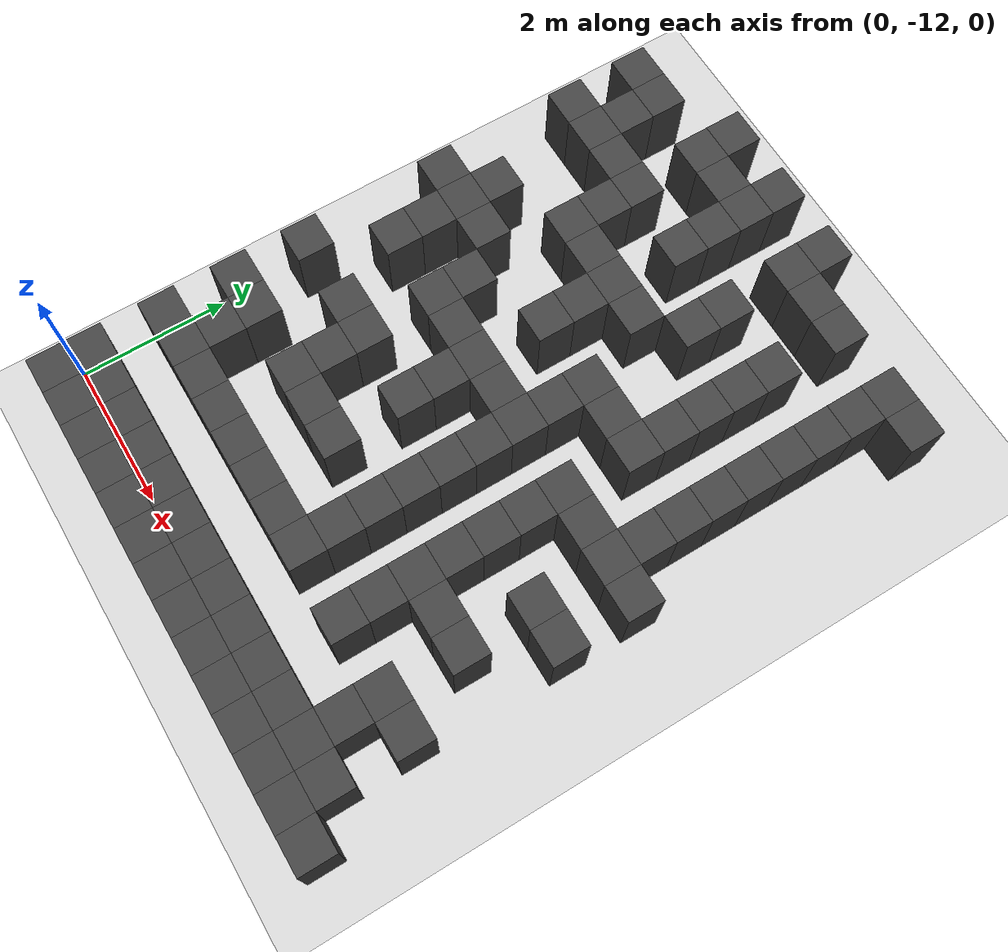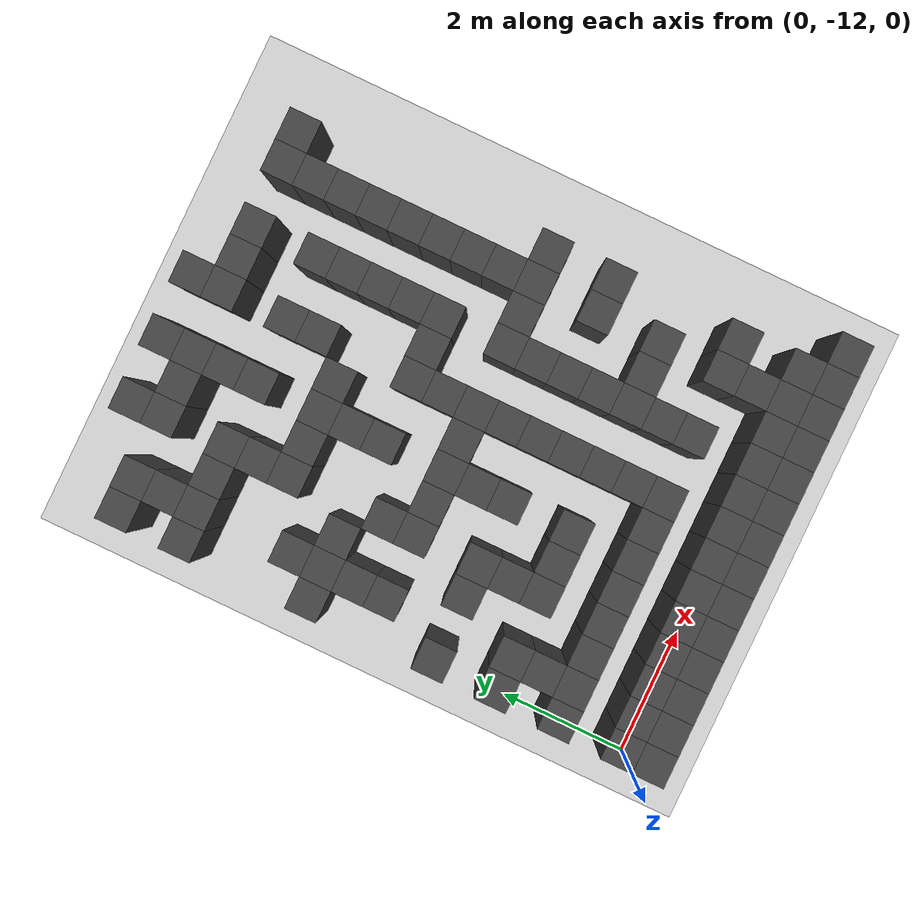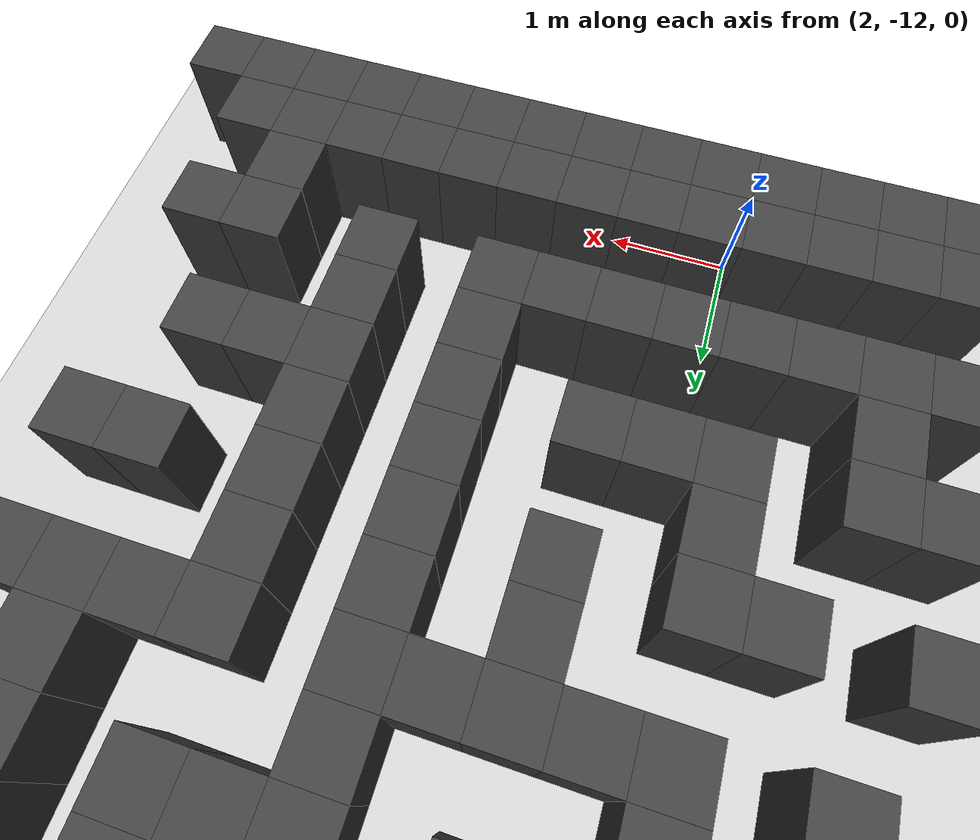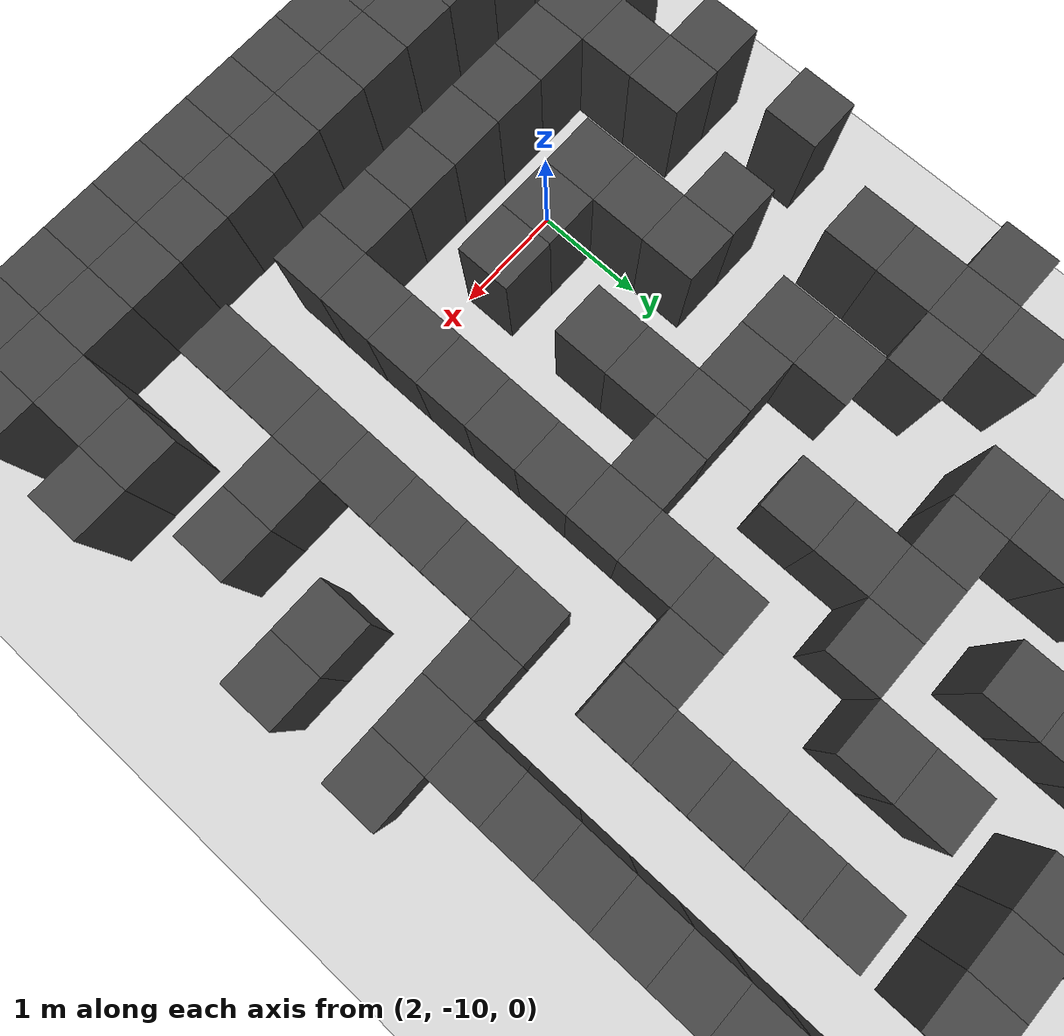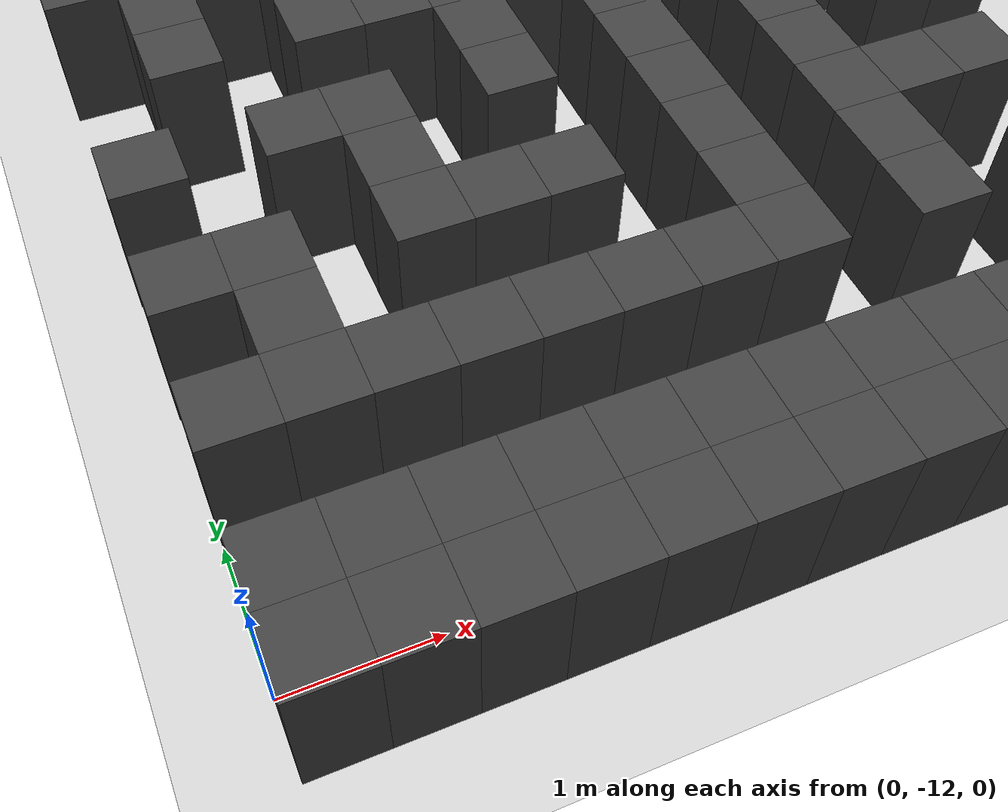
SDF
<sdf version="1.7">
 <world name="map_16668">
  <model name="ground_plane">
   <static>true</static>
   <link name="link">
    <collision name="collision">
     <geometry><plane><normal>0 0 1</normal><size>200 200</size></plane></geometry>
    </collision>
    <visual name="visual">
     <geometry><plane><normal>0 0 1</normal><size>200 200</size></plane></geometry>
     <material><ambient>0.8 0.8 0.8 1</ambient><diffuse>0.8 0.8 0.8 1</diffuse></material>
    </visual>
   </link>
  </model>
  <model name="maze_environment">
   <static>true</static>
   <link name="wall_758">
    <pose>1.750 -3.250 0.500 0 0 0</pose>
    <collision name="col"><geometry><box><size>0.5 0.5 1.0</size></box></geometry></collision>
    <visual name="vis">
     <geometry><box><size>0.5 0.5 1.0</size></box></geometry>
     <material><ambient>0.15 0.15 0.15 1</ambient><diffuse>0.25 0.25 0.25 1</diffuse></material>
    </visual>
   </link>
   <link name="wall_759">
    <pose>2.750 -3.250 0.500 0 0 0</pose>
    <collision name="col"><geometry><box><size>0.5 0.5 1.0</size></box></geometry></collision>
    <visual name="vis">
     <geometry><box><size>0.5 0.5 1.0</size></box></geometry>
     <material><ambient>0.15 0.15 0.15 1</ambient><diffuse>0.25 0.25 0.25 1</diffuse></material>
    </visual>
   </link>
   <link name="wall_760">
    <pose>3.750 -3.250 0.500 0 0 0</pose>
    <collision name="col"><geometry><box><size>0.5 0.5 1.0</size></box></geometry></collision>
    <visual name="vis">
     <geometry><box><size>0.5 0.5 1.0</size></box></geometry>
     <material><ambient>0.15 0.15 0.15 1</ambient><diffuse>0.25 0.25 0.25 1</diffuse></material>
    </visual>
   </link>
   <link name="wall_781">
    <pose>0.250 -3.750 0.500 0 0 0</pose>
    <collision name="col"><geometry><box><size>0.5 0.5 1.0</size></box></geometry></collision>
    <visual name="vis">
     <geometry><box><size>0.5 0.5 1.0</size></box></geometry>
     <material><ambient>0.15 0.15 0.15 1</ambient><diffuse>0.25 0.25 0.25 1</diffuse></material>
    </visual>
   </link>
   <link name="wall_782">
    <pose>0.750 -3.750 0.500 0 0 0</pose>
    <collision name="col"><geometry><box><size>0.5 0.5 1.0</size></box></geometry></collision>
    <visual name="vis">
     <geometry><box><size>0.5 0.5 1.0</size></box></geometry>
     <material><ambient>0.15 0.15 0.15 1</ambient><diffuse>0.25 0.25 0.25 1</diffuse></material>
    </visual>
   </link>
   <link name="wall_783">
    <pose>1.750 -3.750 0.500 0 0 0</pose>
    <collision name="col"><geometry><box><size>0.5 0.5 1.0</size></box></geometry></collision>
    <visual name="vis">
     <geometry><box><size>0.5 0.5 1.0</size></box></geometry>
     <material><ambient>0.15 0.15 0.15 1</ambient><diffuse>0.25 0.25 0.25 1</diffuse></material>
    </visual>
   </link>
   <link name="wall_784">
    <pose>2.250 -3.750 0.500 0 0 0</pose>
    <collision name="col"><geometry><box><size>0.5 0.5 1.0</size></box></geometry></collision>
    <visual name="vis">
     <geometry><box><size>0.5 0.5 1.0</size></box></geometry>
     <material><ambient>0.15 0.15 0.15 1</ambient><diffuse>0.25 0.25 0.25 1</diffuse></material>
    </visual>
   </link>
   <link name="wall_785">
    <pose>2.750 -3.750 0.500 0 0 0</pose>
    <collision name="col"><geometry><box><size>0.5 0.5 1.0</size></box></geometry></collision>
    <visual name="vis">
     <geometry><box><size>0.5 0.5 1.0</size></box></geometry>
     <material><ambient>0.15 0.15 0.15 1</ambient><diffuse>0.25 0.25 0.25 1</diffuse></material>
    </visual>
   </link>
   <link name="wall_786">
    <pose>3.750 -3.750 0.500 0 0 0</pose>
    <collision name="col"><geometry><box><size>0.5 0.5 1.0</size></box></geometry></collision>
    <visual name="vis">
     <geometry><box><size>0.5 0.5 1.0</size></box></geometry>
     <material><ambient>0.15 0.15 0.15 1</ambient><diffuse>0.25 0.25 0.25 1</diffuse></material>
    </visual>
   </link>
   <link name="wall_787">
    <pose>4.250 -3.750 0.500 0 0 0</pose>
    <collision name="col"><geometry><box><size>0.5 0.5 1.0</size></box></geometry></collision>
    <visual name="vis">
     <geometry><box><size>0.5 0.5 1.0</size></box></geometry>
     <material><ambient>0.15 0.15 0.15 1</ambient><diffuse>0.25 0.25 0.25 1</diffuse></material>
    </visual>
   </link>
   <link name="wall_788">
    <pose>4.750 -3.750 0.500 0 0 0</pose>
    <collision name="col"><geometry><box><size>0.5 0.5 1.0</size></box></geometry></collision>
    <visual name="vis">
     <geometry><box><size>0.5 0.5 1.0</size></box></geometry>
     <material><ambient>0.15 0.15 0.15 1</ambient><diffuse>0.25 0.25 0.25 1</diffuse></material>
    </visual>
   </link>
   <link name="wall_789">
    <pose>5.750 -3.750 0.500 0 0 0</pose>
    <collision name="col"><geometry><box><size>0.5 0.5 1.0</size></box></geometry></collision>
    <visual name="vis">
     <geometry><box><size>0.5 0.5 1.0</size></box></geometry>
     <material><ambient>0.15 0.15 0.15 1</ambient><diffuse>0.25 0.25 0.25 1</diffuse></material>
    </visual>
   </link>
   <link name="wall_790">
    <pose>6.250 -3.750 0.500 0 0 0</pose>
    <collision name="col"><geometry><box><size>0.5 0.5 1.0</size></box></geometry></collision>
    <visual name="vis">
     <geometry><box><size>0.5 0.5 1.0</size></box></geometry>
     <material><ambient>0.15 0.15 0.15 1</ambient><diffuse>0.25 0.25 0.25 1</diffuse></material>
    </visual>
   </link>
   <link name="wall_807">
    <pose>0.750 -4.250 0.500 0 0 0</pose>
    <collision name="col"><geometry><box><size>0.5 0.5 1.0</size></box></geometry></collision>
    <visual name="vis">
     <geometry><box><size>0.5 0.5 1.0</size></box></geometry>
     <material><ambient>0.15 0.15 0.15 1</ambient><diffuse>0.25 0.25 0.25 1</diffuse></material>
    </visual>
   </link>
   <link name="wall_808">
    <pose>2.750 -4.250 0.500 0 0 0</pose>
    <collision name="col"><geometry><box><size>0.5 0.5 1.0</size></box></geometry></collision>
    <visual name="vis">
     <geometry><box><size>0.5 0.5 1.0</size></box></geometry>
     <material><ambient>0.15 0.15 0.15 1</ambient><diffuse>0.25 0.25 0.25 1</diffuse></material>
    </visual>
   </link>
   <link name="wall_809">
    <pose>5.750 -4.250 0.500 0 0 0</pose>
    <collision name="col"><geometry><box><size>0.5 0.5 1.0</size></box></geometry></collision>
    <visual name="vis">
     <geometry><box><size>0.5 0.5 1.0</size></box></geometry>
     <material><ambient>0.15 0.15 0.15 1</ambient><diffuse>0.25 0.25 0.25 1</diffuse></material>
    </visual>
   </link>
   <link name="wall_830">
    <pose>0.250 -4.750 0.500 0 0 0</pose>
    <collision name="col"><geometry><box><size>0.5 0.5 1.0</size></box></geometry></collision>
    <visual name="vis">
     <geometry><box><size>0.5 0.5 1.0</size></box></geometry>
     <material><ambient>0.15 0.15 0.15 1</ambient><diffuse>0.25 0.25 0.25 1</diffuse></material>
    </visual>
   </link>
   <link name="wall_831">
    <pose>0.750 -4.750 0.500 0 0 0</pose>
    <collision name="col"><geometry><box><size>0.5 0.5 1.0</size></box></geometry></collision>
    <visual name="vis">
     <geometry><box><size>0.5 0.5 1.0</size></box></geometry>
     <material><ambient>0.15 0.15 0.15 1</ambient><diffuse>0.25 0.25 0.25 1</diffuse></material>
    </visual>
   </link>
   <link name="wall_832">
    <pose>1.250 -4.750 0.500 0 0 0</pose>
    <collision name="col"><geometry><box><size>0.5 0.5 1.0</size></box></geometry></collision>
    <visual name="vis">
     <geometry><box><size>0.5 0.5 1.0</size></box></geometry>
     <material><ambient>0.15 0.15 0.15 1</ambient><diffuse>0.25 0.25 0.25 1</diffuse></material>
    </visual>
   </link>
   <link name="wall_833">
    <pose>1.750 -4.750 0.500 0 0 0</pose>
    <collision name="col"><geometry><box><size>0.5 0.5 1.0</size></box></geometry></collision>
    <visual name="vis">
     <geometry><box><size>0.5 0.5 1.0</size></box></geometry>
     <material><ambient>0.15 0.15 0.15 1</ambient><diffuse>0.25 0.25 0.25 1</diffuse></material>
    </visual>
   </link>
   <link name="wall_834">
    <pose>2.750 -4.750 0.500 0 0 0</pose>
    <collision name="col"><geometry><box><size>0.5 0.5 1.0</size></box></geometry></collision>
    <visual name="vis">
     <geometry><box><size>0.5 0.5 1.0</size></box></geometry>
     <material><ambient>0.15 0.15 0.15 1</ambient><diffuse>0.25 0.25 0.25 1</diffuse></material>
    </visual>
   </link>
   <link name="wall_835">
    <pose>3.750 -4.750 0.500 0 0 0</pose>
    <collision name="col"><geometry><box><size>0.5 0.5 1.0</size></box></geometry></collision>
    <visual name="vis">
     <geometry><box><size>0.5 0.5 1.0</size></box></geometry>
     <material><ambient>0.15 0.15 0.15 1</ambient><diffuse>0.25 0.25 0.25 1</diffuse></material>
    </visual>
   </link>
   <link name="wall_836">
    <pose>4.750 -4.750 0.500 0 0 0</pose>
    <collision name="col"><geometry><box><size>0.5 0.5 1.0</size></box></geometry></collision>
    <visual name="vis">
     <geometry><box><size>0.5 0.5 1.0</size></box></geometry>
     <material><ambient>0.15 0.15 0.15 1</ambient><diffuse>0.25 0.25 0.25 1</diffuse></material>
    </visual>
   </link>
   <link name="wall_837">
    <pose>5.750 -4.750 0.500 0 0 0</pose>
    <collision name="col"><geometry><box><size>0.5 0.5 1.0</size></box></geometry></collision>
    <visual name="vis">
     <geometry><box><size>0.5 0.5 1.0</size></box></geometry>
     <material><ambient>0.15 0.15 0.15 1</ambient><diffuse>0.25 0.25 0.25 1</diffuse></material>
    </visual>
   </link>
   <link name="wall_853">
    <pose>1.750 -5.250 0.500 0 0 0</pose>
    <collision name="col"><geometry><box><size>0.5 0.5 1.0</size></box></geometry></collision>
    <visual name="vis">
     <geometry><box><size>0.5 0.5 1.0</size></box></geometry>
     <material><ambient>0.15 0.15 0.15 1</ambient><diffuse>0.25 0.25 0.25 1</diffuse></material>
    </visual>
   </link>
   <link name="wall_854">
    <pose>3.750 -5.250 0.500 0 0 0</pose>
    <collision name="col"><geometry><box><size>0.5 0.5 1.0</size></box></geometry></collision>
    <visual name="vis">
     <geometry><box><size>0.5 0.5 1.0</size></box></geometry>
     <material><ambient>0.15 0.15 0.15 1</ambient><diffuse>0.25 0.25 0.25 1</diffuse></material>
    </visual>
   </link>
   <link name="wall_855">
    <pose>4.750 -5.250 0.500 0 0 0</pose>
    <collision name="col"><geometry><box><size>0.5 0.5 1.0</size></box></geometry></collision>
    <visual name="vis">
     <geometry><box><size>0.5 0.5 1.0</size></box></geometry>
     <material><ambient>0.15 0.15 0.15 1</ambient><diffuse>0.25 0.25 0.25 1</diffuse></material>
    </visual>
   </link>
   <link name="wall_856">
    <pose>5.750 -5.250 0.500 0 0 0</pose>
    <collision name="col"><geometry><box><size>0.5 0.5 1.0</size></box></geometry></collision>
    <visual name="vis">
     <geometry><box><size>0.5 0.5 1.0</size></box></geometry>
     <material><ambient>0.15 0.15 0.15 1</ambient><diffuse>0.25 0.25 0.25 1</diffuse></material>
    </visual>
   </link>
   <link name="wall_881">
    <pose>1.750 -5.750 0.500 0 0 0</pose>
    <collision name="col"><geometry><box><size>0.5 0.5 1.0</size></box></geometry></collision>
    <visual name="vis">
     <geometry><box><size>0.5 0.5 1.0</size></box></geometry>
     <material><ambient>0.15 0.15 0.15 1</ambient><diffuse>0.25 0.25 0.25 1</diffuse></material>
    </visual>
   </link>
   <link name="wall_882">
    <pose>2.250 -5.750 0.500 0 0 0</pose>
    <collision name="col"><geometry><box><size>0.5 0.5 1.0</size></box></geometry></collision>
    <visual name="vis">
     <geometry><box><size>0.5 0.5 1.0</size></box></geometry>
     <material><ambient>0.15 0.15 0.15 1</ambient><diffuse>0.25 0.25 0.25 1</diffuse></material>
    </visual>
   </link>
   <link name="wall_883">
    <pose>2.750 -5.750 0.500 0 0 0</pose>
    <collision name="col"><geometry><box><size>0.5 0.5 1.0</size></box></geometry></collision>
    <visual name="vis">
     <geometry><box><size>0.5 0.5 1.0</size></box></geometry>
     <material><ambient>0.15 0.15 0.15 1</ambient><diffuse>0.25 0.25 0.25 1</diffuse></material>
    </visual>
   </link>
   <link name="wall_884">
    <pose>3.250 -5.750 0.500 0 0 0</pose>
    <collision name="col"><geometry><box><size>0.5 0.5 1.0</size></box></geometry></collision>
    <visual name="vis">
     <geometry><box><size>0.5 0.5 1.0</size></box></geometry>
     <material><ambient>0.15 0.15 0.15 1</ambient><diffuse>0.25 0.25 0.25 1</diffuse></material>
    </visual>
   </link>
   <link name="wall_885">
    <pose>4.750 -5.750 0.500 0 0 0</pose>
    <collision name="col"><geometry><box><size>0.5 0.5 1.0</size></box></geometry></collision>
    <visual name="vis">
     <geometry><box><size>0.5 0.5 1.0</size></box></geometry>
     <material><ambient>0.15 0.15 0.15 1</ambient><diffuse>0.25 0.25 0.25 1</diffuse></material>
    </visual>
   </link>
   <link name="wall_886">
    <pose>5.750 -5.750 0.500 0 0 0</pose>
    <collision name="col"><geometry><box><size>0.5 0.5 1.0</size></box></geometry></collision>
    <visual name="vis">
     <geometry><box><size>0.5 0.5 1.0</size></box></geometry>
     <material><ambient>0.15 0.15 0.15 1</ambient><diffuse>0.25 0.25 0.25 1</diffuse></material>
    </visual>
   </link>
   <link name="wall_901">
    <pose>0.750 -6.250 0.500 0 0 0</pose>
    <collision name="col"><geometry><box><size>0.5 0.5 1.0</size></box></geometry></collision>
    <visual name="vis">
     <geometry><box><size>0.5 0.5 1.0</size></box></geometry>
     <material><ambient>0.15 0.15 0.15 1</ambient><diffuse>0.25 0.25 0.25 1</diffuse></material>
    </visual>
   </link>
   <link name="wall_902">
    <pose>2.750 -6.250 0.500 0 0 0</pose>
    <collision name="col"><geometry><box><size>0.5 0.5 1.0</size></box></geometry></collision>
    <visual name="vis">
     <geometry><box><size>0.5 0.5 1.0</size></box></geometry>
     <material><ambient>0.15 0.15 0.15 1</ambient><diffuse>0.25 0.25 0.25 1</diffuse></material>
    </visual>
   </link>
   <link name="wall_903">
    <pose>4.750 -6.250 0.500 0 0 0</pose>
    <collision name="col"><geometry><box><size>0.5 0.5 1.0</size></box></geometry></collision>
    <visual name="vis">
     <geometry><box><size>0.5 0.5 1.0</size></box></geometry>
     <material><ambient>0.15 0.15 0.15 1</ambient><diffuse>0.25 0.25 0.25 1</diffuse></material>
    </visual>
   </link>
   <link name="wall_904">
    <pose>5.750 -6.250 0.500 0 0 0</pose>
    <collision name="col"><geometry><box><size>0.5 0.5 1.0</size></box></geometry></collision>
    <visual name="vis">
     <geometry><box><size>0.5 0.5 1.0</size></box></geometry>
     <material><ambient>0.15 0.15 0.15 1</ambient><diffuse>0.25 0.25 0.25 1</diffuse></material>
    </visual>
   </link>
   <link name="wall_927">
    <pose>0.250 -6.750 0.500 0 0 0</pose>
    <collision name="col"><geometry><box><size>0.5 0.5 1.0</size></box></geometry></collision>
    <visual name="vis">
     <geometry><box><size>0.5 0.5 1.0</size></box></geometry>
     <material><ambient>0.15 0.15 0.15 1</ambient><diffuse>0.25 0.25 0.25 1</diffuse></material>
    </visual>
   </link>
   <link name="wall_928">
    <pose>0.750 -6.750 0.500 0 0 0</pose>
    <collision name="col"><geometry><box><size>0.5 0.5 1.0</size></box></geometry></collision>
    <visual name="vis">
     <geometry><box><size>0.5 0.5 1.0</size></box></geometry>
     <material><ambient>0.15 0.15 0.15 1</ambient><diffuse>0.25 0.25 0.25 1</diffuse></material>
    </visual>
   </link>
   <link name="wall_929">
    <pose>1.250 -6.750 0.500 0 0 0</pose>
    <collision name="col"><geometry><box><size>0.5 0.5 1.0</size></box></geometry></collision>
    <visual name="vis">
     <geometry><box><size>0.5 0.5 1.0</size></box></geometry>
     <material><ambient>0.15 0.15 0.15 1</ambient><diffuse>0.25 0.25 0.25 1</diffuse></material>
    </visual>
   </link>
   <link name="wall_930">
    <pose>2.750 -6.750 0.500 0 0 0</pose>
    <collision name="col"><geometry><box><size>0.5 0.5 1.0</size></box></geometry></collision>
    <visual name="vis">
     <geometry><box><size>0.5 0.5 1.0</size></box></geometry>
     <material><ambient>0.15 0.15 0.15 1</ambient><diffuse>0.25 0.25 0.25 1</diffuse></material>
    </visual>
   </link>
   <link name="wall_931">
    <pose>3.750 -6.750 0.500 0 0 0</pose>
    <collision name="col"><geometry><box><size>0.5 0.5 1.0</size></box></geometry></collision>
    <visual name="vis">
     <geometry><box><size>0.5 0.5 1.0</size></box></geometry>
     <material><ambient>0.15 0.15 0.15 1</ambient><diffuse>0.25 0.25 0.25 1</diffuse></material>
    </visual>
   </link>
   <link name="wall_932">
    <pose>4.250 -6.750 0.500 0 0 0</pose>
    <collision name="col"><geometry><box><size>0.5 0.5 1.0</size></box></geometry></collision>
    <visual name="vis">
     <geometry><box><size>0.5 0.5 1.0</size></box></geometry>
     <material><ambient>0.15 0.15 0.15 1</ambient><diffuse>0.25 0.25 0.25 1</diffuse></material>
    </visual>
   </link>
   <link name="wall_933">
    <pose>4.750 -6.750 0.500 0 0 0</pose>
    <collision name="col"><geometry><box><size>0.5 0.5 1.0</size></box></geometry></collision>
    <visual name="vis">
     <geometry><box><size>0.5 0.5 1.0</size></box></geometry>
     <material><ambient>0.15 0.15 0.15 1</ambient><diffuse>0.25 0.25 0.25 1</diffuse></material>
    </visual>
   </link>
   <link name="wall_934">
    <pose>5.750 -6.750 0.500 0 0 0</pose>
    <collision name="col"><geometry><box><size>0.5 0.5 1.0</size></box></geometry></collision>
    <visual name="vis">
     <geometry><box><size>0.5 0.5 1.0</size></box></geometry>
     <material><ambient>0.15 0.15 0.15 1</ambient><diffuse>0.25 0.25 0.25 1</diffuse></material>
    </visual>
   </link>
   <link name="wall_948">
    <pose>0.750 -7.250 0.500 0 0 0</pose>
    <collision name="col"><geometry><box><size>0.5 0.5 1.0</size></box></geometry></collision>
    <visual name="vis">
     <geometry><box><size>0.5 0.5 1.0</size></box></geometry>
     <material><ambient>0.15 0.15 0.15 1</ambient><diffuse>0.25 0.25 0.25 1</diffuse></material>
    </visual>
   </link>
   <link name="wall_949">
    <pose>1.750 -7.250 0.500 0 0 0</pose>
    <collision name="col"><geometry><box><size>0.5 0.5 1.0</size></box></geometry></collision>
    <visual name="vis">
     <geometry><box><size>0.5 0.5 1.0</size></box></geometry>
     <material><ambient>0.15 0.15 0.15 1</ambient><diffuse>0.25 0.25 0.25 1</diffuse></material>
    </visual>
   </link>
   <link name="wall_950">
    <pose>3.750 -7.250 0.500 0 0 0</pose>
    <collision name="col"><geometry><box><size>0.5 0.5 1.0</size></box></geometry></collision>
    <visual name="vis">
     <geometry><box><size>0.5 0.5 1.0</size></box></geometry>
     <material><ambient>0.15 0.15 0.15 1</ambient><diffuse>0.25 0.25 0.25 1</diffuse></material>
    </visual>
   </link>
   <link name="wall_951">
    <pose>5.750 -7.250 0.500 0 0 0</pose>
    <collision name="col"><geometry><box><size>0.5 0.5 1.0</size></box></geometry></collision>
    <visual name="vis">
     <geometry><box><size>0.5 0.5 1.0</size></box></geometry>
     <material><ambient>0.15 0.15 0.15 1</ambient><diffuse>0.25 0.25 0.25 1</diffuse></material>
    </visual>
   </link>
   <link name="wall_972">
    <pose>0.750 -7.750 0.500 0 0 0</pose>
    <collision name="col"><geometry><box><size>0.5 0.5 1.0</size></box></geometry></collision>
    <visual name="vis">
     <geometry><box><size>0.5 0.5 1.0</size></box></geometry>
     <material><ambient>0.15 0.15 0.15 1</ambient><diffuse>0.25 0.25 0.25 1</diffuse></material>
    </visual>
   </link>
   <link name="wall_973">
    <pose>1.750 -7.750 0.500 0 0 0</pose>
    <collision name="col"><geometry><box><size>0.5 0.5 1.0</size></box></geometry></collision>
    <visual name="vis">
     <geometry><box><size>0.5 0.5 1.0</size></box></geometry>
     <material><ambient>0.15 0.15 0.15 1</ambient><diffuse>0.25 0.25 0.25 1</diffuse></material>
    </visual>
   </link>
   <link name="wall_974">
    <pose>2.250 -7.750 0.500 0 0 0</pose>
    <collision name="col"><geometry><box><size>0.5 0.5 1.0</size></box></geometry></collision>
    <visual name="vis">
     <geometry><box><size>0.5 0.5 1.0</size></box></geometry>
     <material><ambient>0.15 0.15 0.15 1</ambient><diffuse>0.25 0.25 0.25 1</diffuse></material>
    </visual>
   </link>
   <link name="wall_975">
    <pose>2.750 -7.750 0.500 0 0 0</pose>
    <collision name="col"><geometry><box><size>0.5 0.5 1.0</size></box></geometry></collision>
    <visual name="vis">
     <geometry><box><size>0.5 0.5 1.0</size></box></geometry>
     <material><ambient>0.15 0.15 0.15 1</ambient><diffuse>0.25 0.25 0.25 1</diffuse></material>
    </visual>
   </link>
   <link name="wall_976">
    <pose>3.250 -7.750 0.500 0 0 0</pose>
    <collision name="col"><geometry><box><size>0.5 0.5 1.0</size></box></geometry></collision>
    <visual name="vis">
     <geometry><box><size>0.5 0.5 1.0</size></box></geometry>
     <material><ambient>0.15 0.15 0.15 1</ambient><diffuse>0.25 0.25 0.25 1</diffuse></material>
    </visual>
   </link>
   <link name="wall_977">
    <pose>3.750 -7.750 0.500 0 0 0</pose>
    <collision name="col"><geometry><box><size>0.5 0.5 1.0</size></box></geometry></collision>
    <visual name="vis">
     <geometry><box><size>0.5 0.5 1.0</size></box></geometry>
     <material><ambient>0.15 0.15 0.15 1</ambient><diffuse>0.25 0.25 0.25 1</diffuse></material>
    </visual>
   </link>
   <link name="wall_978">
    <pose>4.750 -7.750 0.500 0 0 0</pose>
    <collision name="col"><geometry><box><size>0.5 0.5 1.0</size></box></geometry></collision>
    <visual name="vis">
     <geometry><box><size>0.5 0.5 1.0</size></box></geometry>
     <material><ambient>0.15 0.15 0.15 1</ambient><diffuse>0.25 0.25 0.25 1</diffuse></material>
    </visual>
   </link>
   <link name="wall_979">
    <pose>5.250 -7.750 0.500 0 0 0</pose>
    <collision name="col"><geometry><box><size>0.5 0.5 1.0</size></box></geometry></collision>
    <visual name="vis">
     <geometry><box><size>0.5 0.5 1.0</size></box></geometry>
     <material><ambient>0.15 0.15 0.15 1</ambient><diffuse>0.25 0.25 0.25 1</diffuse></material>
    </visual>
   </link>
   <link name="wall_980">
    <pose>5.750 -7.750 0.500 0 0 0</pose>
    <collision name="col"><geometry><box><size>0.5 0.5 1.0</size></box></geometry></collision>
    <visual name="vis">
     <geometry><box><size>0.5 0.5 1.0</size></box></geometry>
     <material><ambient>0.15 0.15 0.15 1</ambient><diffuse>0.25 0.25 0.25 1</diffuse></material>
    </visual>
   </link>
   <link name="wall_981">
    <pose>6.250 -7.750 0.500 0 0 0</pose>
    <collision name="col"><geometry><box><size>0.5 0.5 1.0</size></box></geometry></collision>
    <visual name="vis">
     <geometry><box><size>0.5 0.5 1.0</size></box></geometry>
     <material><ambient>0.15 0.15 0.15 1</ambient><diffuse>0.25 0.25 0.25 1</diffuse></material>
    </visual>
   </link>
   <link name="wall_999">
    <pose>2.750 -8.250 0.500 0 0 0</pose>
    <collision name="col"><geometry><box><size>0.5 0.5 1.0</size></box></geometry></collision>
    <visual name="vis">
     <geometry><box><size>0.5 0.5 1.0</size></box></geometry>
     <material><ambient>0.15 0.15 0.15 1</ambient><diffuse>0.25 0.25 0.25 1</diffuse></material>
    </visual>
   </link>
   <link name="wall_1000">
    <pose>3.750 -8.250 0.500 0 0 0</pose>
    <collision name="col"><geometry><box><size>0.5 0.5 1.0</size></box></geometry></collision>
    <visual name="vis">
     <geometry><box><size>0.5 0.5 1.0</size></box></geometry>
     <material><ambient>0.15 0.15 0.15 1</ambient><diffuse>0.25 0.25 0.25 1</diffuse></material>
    </visual>
   </link>
   <link name="wall_1001">
    <pose>4.750 -8.250 0.500 0 0 0</pose>
    <collision name="col"><geometry><box><size>0.5 0.5 1.0</size></box></geometry></collision>
    <visual name="vis">
     <geometry><box><size>0.5 0.5 1.0</size></box></geometry>
     <material><ambient>0.15 0.15 0.15 1</ambient><diffuse>0.25 0.25 0.25 1</diffuse></material>
    </visual>
   </link>
   <link name="wall_1022">
    <pose>0.250 -8.750 0.500 0 0 0</pose>
    <collision name="col"><geometry><box><size>0.5 0.5 1.0</size></box></geometry></collision>
    <visual name="vis">
     <geometry><box><size>0.5 0.5 1.0</size></box></geometry>
     <material><ambient>0.15 0.15 0.15 1</ambient><diffuse>0.25 0.25 0.25 1</diffuse></material>
    </visual>
   </link>
   <link name="wall_1023">
    <pose>1.250 -8.750 0.500 0 0 0</pose>
    <collision name="col"><geometry><box><size>0.5 0.5 1.0</size></box></geometry></collision>
    <visual name="vis">
     <geometry><box><size>0.5 0.5 1.0</size></box></geometry>
     <material><ambient>0.15 0.15 0.15 1</ambient><diffuse>0.25 0.25 0.25 1</diffuse></material>
    </visual>
   </link>
   <link name="wall_1024">
    <pose>1.750 -8.750 0.500 0 0 0</pose>
    <collision name="col"><geometry><box><size>0.5 0.5 1.0</size></box></geometry></collision>
    <visual name="vis">
     <geometry><box><size>0.5 0.5 1.0</size></box></geometry>
     <material><ambient>0.15 0.15 0.15 1</ambient><diffuse>0.25 0.25 0.25 1</diffuse></material>
    </visual>
   </link>
   <link name="wall_1025">
    <pose>2.750 -8.750 0.500 0 0 0</pose>
    <collision name="col"><geometry><box><size>0.5 0.5 1.0</size></box></geometry></collision>
    <visual name="vis">
     <geometry><box><size>0.5 0.5 1.0</size></box></geometry>
     <material><ambient>0.15 0.15 0.15 1</ambient><diffuse>0.25 0.25 0.25 1</diffuse></material>
    </visual>
   </link>
   <link name="wall_1026">
    <pose>3.750 -8.750 0.500 0 0 0</pose>
    <collision name="col"><geometry><box><size>0.5 0.5 1.0</size></box></geometry></collision>
    <visual name="vis">
     <geometry><box><size>0.5 0.5 1.0</size></box></geometry>
     <material><ambient>0.15 0.15 0.15 1</ambient><diffuse>0.25 0.25 0.25 1</diffuse></material>
    </visual>
   </link>
   <link name="wall_1027">
    <pose>4.750 -8.750 0.500 0 0 0</pose>
    <collision name="col"><geometry><box><size>0.5 0.5 1.0</size></box></geometry></collision>
    <visual name="vis">
     <geometry><box><size>0.5 0.5 1.0</size></box></geometry>
     <material><ambient>0.15 0.15 0.15 1</ambient><diffuse>0.25 0.25 0.25 1</diffuse></material>
    </visual>
   </link>
   <link name="wall_1028">
    <pose>5.750 -8.750 0.500 0 0 0</pose>
    <collision name="col"><geometry><box><size>0.5 0.5 1.0</size></box></geometry></collision>
    <visual name="vis">
     <geometry><box><size>0.5 0.5 1.0</size></box></geometry>
     <material><ambient>0.15 0.15 0.15 1</ambient><diffuse>0.25 0.25 0.25 1</diffuse></material>
    </visual>
   </link>
   <link name="wall_1029">
    <pose>6.250 -8.750 0.500 0 0 0</pose>
    <collision name="col"><geometry><box><size>0.5 0.5 1.0</size></box></geometry></collision>
    <visual name="vis">
     <geometry><box><size>0.5 0.5 1.0</size></box></geometry>
     <material><ambient>0.15 0.15 0.15 1</ambient><diffuse>0.25 0.25 0.25 1</diffuse></material>
    </visual>
   </link>
   <link name="wall_1047">
    <pose>1.750 -9.250 0.500 0 0 0</pose>
    <collision name="col"><geometry><box><size>0.5 0.5 1.0</size></box></geometry></collision>
    <visual name="vis">
     <geometry><box><size>0.5 0.5 1.0</size></box></geometry>
     <material><ambient>0.15 0.15 0.15 1</ambient><diffuse>0.25 0.25 0.25 1</diffuse></material>
    </visual>
   </link>
   <link name="wall_1048">
    <pose>3.750 -9.250 0.500 0 0 0</pose>
    <collision name="col"><geometry><box><size>0.5 0.5 1.0</size></box></geometry></collision>
    <visual name="vis">
     <geometry><box><size>0.5 0.5 1.0</size></box></geometry>
     <material><ambient>0.15 0.15 0.15 1</ambient><diffuse>0.25 0.25 0.25 1</diffuse></material>
    </visual>
   </link>
   <link name="wall_1049">
    <pose>4.750 -9.250 0.500 0 0 0</pose>
    <collision name="col"><geometry><box><size>0.5 0.5 1.0</size></box></geometry></collision>
    <visual name="vis">
     <geometry><box><size>0.5 0.5 1.0</size></box></geometry>
     <material><ambient>0.15 0.15 0.15 1</ambient><diffuse>0.25 0.25 0.25 1</diffuse></material>
    </visual>
   </link>
   <link name="wall_1071">
    <pose>0.250 -9.750 0.500 0 0 0</pose>
    <collision name="col"><geometry><box><size>0.5 0.5 1.0</size></box></geometry></collision>
    <visual name="vis">
     <geometry><box><size>0.5 0.5 1.0</size></box></geometry>
     <material><ambient>0.15 0.15 0.15 1</ambient><diffuse>0.25 0.25 0.25 1</diffuse></material>
    </visual>
   </link>
   <link name="wall_1072">
    <pose>0.750 -9.750 0.500 0 0 0</pose>
    <collision name="col"><geometry><box><size>0.5 0.5 1.0</size></box></geometry></collision>
    <visual name="vis">
     <geometry><box><size>0.5 0.5 1.0</size></box></geometry>
     <material><ambient>0.15 0.15 0.15 1</ambient><diffuse>0.25 0.25 0.25 1</diffuse></material>
    </visual>
   </link>
   <link name="wall_1073">
    <pose>1.750 -9.750 0.500 0 0 0</pose>
    <collision name="col"><geometry><box><size>0.5 0.5 1.0</size></box></geometry></collision>
    <visual name="vis">
     <geometry><box><size>0.5 0.5 1.0</size></box></geometry>
     <material><ambient>0.15 0.15 0.15 1</ambient><diffuse>0.25 0.25 0.25 1</diffuse></material>
    </visual>
   </link>
   <link name="wall_1074">
    <pose>2.250 -9.750 0.500 0 0 0</pose>
    <collision name="col"><geometry><box><size>0.5 0.5 1.0</size></box></geometry></collision>
    <visual name="vis">
     <geometry><box><size>0.5 0.5 1.0</size></box></geometry>
     <material><ambient>0.15 0.15 0.15 1</ambient><diffuse>0.25 0.25 0.25 1</diffuse></material>
    </visual>
   </link>
   <link name="wall_1075">
    <pose>2.750 -9.750 0.500 0 0 0</pose>
    <collision name="col"><geometry><box><size>0.5 0.5 1.0</size></box></geometry></collision>
    <visual name="vis">
     <geometry><box><size>0.5 0.5 1.0</size></box></geometry>
     <material><ambient>0.15 0.15 0.15 1</ambient><diffuse>0.25 0.25 0.25 1</diffuse></material>
    </visual>
   </link>
   <link name="wall_1076">
    <pose>3.750 -9.750 0.500 0 0 0</pose>
    <collision name="col"><geometry><box><size>0.5 0.5 1.0</size></box></geometry></collision>
    <visual name="vis">
     <geometry><box><size>0.5 0.5 1.0</size></box></geometry>
     <material><ambient>0.15 0.15 0.15 1</ambient><diffuse>0.25 0.25 0.25 1</diffuse></material>
    </visual>
   </link>
   <link name="wall_1077">
    <pose>4.750 -9.750 0.500 0 0 0</pose>
    <collision name="col"><geometry><box><size>0.5 0.5 1.0</size></box></geometry></collision>
    <visual name="vis">
     <geometry><box><size>0.5 0.5 1.0</size></box></geometry>
     <material><ambient>0.15 0.15 0.15 1</ambient><diffuse>0.25 0.25 0.25 1</diffuse></material>
    </visual>
   </link>
   <link name="wall_1078">
    <pose>5.250 -9.750 0.500 0 0 0</pose>
    <collision name="col"><geometry><box><size>0.5 0.5 1.0</size></box></geometry></collision>
    <visual name="vis">
     <geometry><box><size>0.5 0.5 1.0</size></box></geometry>
     <material><ambient>0.15 0.15 0.15 1</ambient><diffuse>0.25 0.25 0.25 1</diffuse></material>
    </visual>
   </link>
   <link name="wall_1079">
    <pose>5.750 -9.750 0.500 0 0 0</pose>
    <collision name="col"><geometry><box><size>0.5 0.5 1.0</size></box></geometry></collision>
    <visual name="vis">
     <geometry><box><size>0.5 0.5 1.0</size></box></geometry>
     <material><ambient>0.15 0.15 0.15 1</ambient><diffuse>0.25 0.25 0.25 1</diffuse></material>
    </visual>
   </link>
   <link name="wall_1096">
    <pose>0.750 -10.250 0.500 0 0 0</pose>
    <collision name="col"><geometry><box><size>0.5 0.5 1.0</size></box></geometry></collision>
    <visual name="vis">
     <geometry><box><size>0.5 0.5 1.0</size></box></geometry>
     <material><ambient>0.15 0.15 0.15 1</ambient><diffuse>0.25 0.25 0.25 1</diffuse></material>
    </visual>
   </link>
   <link name="wall_1097">
    <pose>3.750 -10.250 0.500 0 0 0</pose>
    <collision name="col"><geometry><box><size>0.5 0.5 1.0</size></box></geometry></collision>
    <visual name="vis">
     <geometry><box><size>0.5 0.5 1.0</size></box></geometry>
     <material><ambient>0.15 0.15 0.15 1</ambient><diffuse>0.25 0.25 0.25 1</diffuse></material>
    </visual>
   </link>
   <link name="wall_1098">
    <pose>4.750 -10.250 0.500 0 0 0</pose>
    <collision name="col"><geometry><box><size>0.5 0.5 1.0</size></box></geometry></collision>
    <visual name="vis">
     <geometry><box><size>0.5 0.5 1.0</size></box></geometry>
     <material><ambient>0.15 0.15 0.15 1</ambient><diffuse>0.25 0.25 0.25 1</diffuse></material>
    </visual>
   </link>
   <link name="wall_1122">
    <pose>0.250 -10.750 0.500 0 0 0</pose>
    <collision name="col"><geometry><box><size>0.5 0.5 1.0</size></box></geometry></collision>
    <visual name="vis">
     <geometry><box><size>0.5 0.5 1.0</size></box></geometry>
     <material><ambient>0.15 0.15 0.15 1</ambient><diffuse>0.25 0.25 0.25 1</diffuse></material>
    </visual>
   </link>
   <link name="wall_1123">
    <pose>0.750 -10.750 0.500 0 0 0</pose>
    <collision name="col"><geometry><box><size>0.5 0.5 1.0</size></box></geometry></collision>
    <visual name="vis">
     <geometry><box><size>0.5 0.5 1.0</size></box></geometry>
     <material><ambient>0.15 0.15 0.15 1</ambient><diffuse>0.25 0.25 0.25 1</diffuse></material>
    </visual>
   </link>
   <link name="wall_1124">
    <pose>1.250 -10.750 0.500 0 0 0</pose>
    <collision name="col"><geometry><box><size>0.5 0.5 1.0</size></box></geometry></collision>
    <visual name="vis">
     <geometry><box><size>0.5 0.5 1.0</size></box></geometry>
     <material><ambient>0.15 0.15 0.15 1</ambient><diffuse>0.25 0.25 0.25 1</diffuse></material>
    </visual>
   </link>
   <link name="wall_1125">
    <pose>1.750 -10.750 0.500 0 0 0</pose>
    <collision name="col"><geometry><box><size>0.5 0.5 1.0</size></box></geometry></collision>
    <visual name="vis">
     <geometry><box><size>0.5 0.5 1.0</size></box></geometry>
     <material><ambient>0.15 0.15 0.15 1</ambient><diffuse>0.25 0.25 0.25 1</diffuse></material>
    </visual>
   </link>
   <link name="wall_1126">
    <pose>2.250 -10.750 0.500 0 0 0</pose>
    <collision name="col"><geometry><box><size>0.5 0.5 1.0</size></box></geometry></collision>
    <visual name="vis">
     <geometry><box><size>0.5 0.5 1.0</size></box></geometry>
     <material><ambient>0.15 0.15 0.15 1</ambient><diffuse>0.25 0.25 0.25 1</diffuse></material>
    </visual>
   </link>
   <link name="wall_1127">
    <pose>2.750 -10.750 0.500 0 0 0</pose>
    <collision name="col"><geometry><box><size>0.5 0.5 1.0</size></box></geometry></collision>
    <visual name="vis">
     <geometry><box><size>0.5 0.5 1.0</size></box></geometry>
     <material><ambient>0.15 0.15 0.15 1</ambient><diffuse>0.25 0.25 0.25 1</diffuse></material>
    </visual>
   </link>
   <link name="wall_1128">
    <pose>3.250 -10.750 0.500 0 0 0</pose>
    <collision name="col"><geometry><box><size>0.5 0.5 1.0</size></box></geometry></collision>
    <visual name="vis">
     <geometry><box><size>0.5 0.5 1.0</size></box></geometry>
     <material><ambient>0.15 0.15 0.15 1</ambient><diffuse>0.25 0.25 0.25 1</diffuse></material>
    </visual>
   </link>
   <link name="wall_1129">
    <pose>3.750 -10.750 0.500 0 0 0</pose>
    <collision name="col"><geometry><box><size>0.5 0.5 1.0</size></box></geometry></collision>
    <visual name="vis">
     <geometry><box><size>0.5 0.5 1.0</size></box></geometry>
     <material><ambient>0.15 0.15 0.15 1</ambient><diffuse>0.25 0.25 0.25 1</diffuse></material>
    </visual>
   </link>
   <link name="wall_1130">
    <pose>4.750 -10.750 0.500 0 0 0</pose>
    <collision name="col"><geometry><box><size>0.5 0.5 1.0</size></box></geometry></collision>
    <visual name="vis">
     <geometry><box><size>0.5 0.5 1.0</size></box></geometry>
     <material><ambient>0.15 0.15 0.15 1</ambient><diffuse>0.25 0.25 0.25 1</diffuse></material>
    </visual>
   </link>
   <link name="wall_1131">
    <pose>5.750 -10.750 0.500 0 0 0</pose>
    <collision name="col"><geometry><box><size>0.5 0.5 1.0</size></box></geometry></collision>
    <visual name="vis">
     <geometry><box><size>0.5 0.5 1.0</size></box></geometry>
     <material><ambient>0.15 0.15 0.15 1</ambient><diffuse>0.25 0.25 0.25 1</diffuse></material>
    </visual>
   </link>
   <link name="wall_1132">
    <pose>6.250 -10.750 0.500 0 0 0</pose>
    <collision name="col"><geometry><box><size>0.5 0.5 1.0</size></box></geometry></collision>
    <visual name="vis">
     <geometry><box><size>0.5 0.5 1.0</size></box></geometry>
     <material><ambient>0.15 0.15 0.15 1</ambient><diffuse>0.25 0.25 0.25 1</diffuse></material>
    </visual>
   </link>
   <link name="wall_1144">
    <pose>5.750 -11.250 0.500 0 0 0</pose>
    <collision name="col"><geometry><box><size>0.5 0.5 1.0</size></box></geometry></collision>
    <visual name="vis">
     <geometry><box><size>0.5 0.5 1.0</size></box></geometry>
     <material><ambient>0.15 0.15 0.15 1</ambient><diffuse>0.25 0.25 0.25 1</diffuse></material>
    </visual>
   </link>
   <link name="wall_1172">
    <pose>0.250 -11.750 0.500 0 0 0</pose>
    <collision name="col"><geometry><box><size>0.5 0.5 1.0</size></box></geometry></collision>
    <visual name="vis">
     <geometry><box><size>0.5 0.5 1.0</size></box></geometry>
     <material><ambient>0.15 0.15 0.15 1</ambient><diffuse>0.25 0.25 0.25 1</diffuse></material>
    </visual>
   </link>
   <link name="wall_1173">
    <pose>0.750 -11.750 0.500 0 0 0</pose>
    <collision name="col"><geometry><box><size>0.5 0.5 1.0</size></box></geometry></collision>
    <visual name="vis">
     <geometry><box><size>0.5 0.5 1.0</size></box></geometry>
     <material><ambient>0.15 0.15 0.15 1</ambient><diffuse>0.25 0.25 0.25 1</diffuse></material>
    </visual>
   </link>
   <link name="wall_1174">
    <pose>1.250 -11.750 0.500 0 0 0</pose>
    <collision name="col"><geometry><box><size>0.5 0.5 1.0</size></box></geometry></collision>
    <visual name="vis">
     <geometry><box><size>0.5 0.5 1.0</size></box></geometry>
     <material><ambient>0.15 0.15 0.15 1</ambient><diffuse>0.25 0.25 0.25 1</diffuse></material>
    </visual>
   </link>
   <link name="wall_1175">
    <pose>1.750 -11.750 0.500 0 0 0</pose>
    <collision name="col"><geometry><box><size>0.5 0.5 1.0</size></box></geometry></collision>
    <visual name="vis">
     <geometry><box><size>0.5 0.5 1.0</size></box></geometry>
     <material><ambient>0.15 0.15 0.15 1</ambient><diffuse>0.25 0.25 0.25 1</diffuse></material>
    </visual>
   </link>
   <link name="wall_1176">
    <pose>2.250 -11.750 0.500 0 0 0</pose>
    <collision name="col"><geometry><box><size>0.5 0.5 1.0</size></box></geometry></collision>
    <visual name="vis">
     <geometry><box><size>0.5 0.5 1.0</size></box></geometry>
     <material><ambient>0.15 0.15 0.15 1</ambient><diffuse>0.25 0.25 0.25 1</diffuse></material>
    </visual>
   </link>
   <link name="wall_1177">
    <pose>2.750 -11.750 0.500 0 0 0</pose>
    <collision name="col"><geometry><box><size>0.5 0.5 1.0</size></box></geometry></collision>
    <visual name="vis">
     <geometry><box><size>0.5 0.5 1.0</size></box></geometry>
     <material><ambient>0.15 0.15 0.15 1</ambient><diffuse>0.25 0.25 0.25 1</diffuse></material>
    </visual>
   </link>
   <link name="wall_1178">
    <pose>3.250 -11.750 0.500 0 0 0</pose>
    <collision name="col"><geometry><box><size>0.5 0.5 1.0</size></box></geometry></collision>
    <visual name="vis">
     <geometry><box><size>0.5 0.5 1.0</size></box></geometry>
     <material><ambient>0.15 0.15 0.15 1</ambient><diffuse>0.25 0.25 0.25 1</diffuse></material>
    </visual>
   </link>
   <link name="wall_1179">
    <pose>3.750 -11.750 0.500 0 0 0</pose>
    <collision name="col"><geometry><box><size>0.5 0.5 1.0</size></box></geometry></collision>
    <visual name="vis">
     <geometry><box><size>0.5 0.5 1.0</size></box></geometry>
     <material><ambient>0.15 0.15 0.15 1</ambient><diffuse>0.25 0.25 0.25 1</diffuse></material>
    </visual>
   </link>
   <link name="wall_1180">
    <pose>4.250 -11.750 0.500 0 0 0</pose>
    <collision name="col"><geometry><box><size>0.5 0.5 1.0</size></box></geometry></collision>
    <visual name="vis">
     <geometry><box><size>0.5 0.5 1.0</size></box></geometry>
     <material><ambient>0.15 0.15 0.15 1</ambient><diffuse>0.25 0.25 0.25 1</diffuse></material>
    </visual>
   </link>
   <link name="wall_1181">
    <pose>4.750 -11.750 0.500 0 0 0</pose>
    <collision name="col"><geometry><box><size>0.5 0.5 1.0</size></box></geometry></collision>
    <visual name="vis">
     <geometry><box><size>0.5 0.5 1.0</size></box></geometry>
     <material><ambient>0.15 0.15 0.15 1</ambient><diffuse>0.25 0.25 0.25 1</diffuse></material>
    </visual>
   </link>
   <link name="wall_1182">
    <pose>5.250 -11.750 0.500 0 0 0</pose>
    <collision name="col"><geometry><box><size>0.5 0.5 1.0</size></box></geometry></collision>
    <visual name="vis">
     <geometry><box><size>0.5 0.5 1.0</size></box></geometry>
     <material><ambient>0.15 0.15 0.15 1</ambient><diffuse>0.25 0.25 0.25 1</diffuse></material>
    </visual>
   </link>
   <link name="wall_1183">
    <pose>5.750 -11.750 0.500 0 0 0</pose>
    <collision name="col"><geometry><box><size>0.5 0.5 1.0</size></box></geometry></collision>
    <visual name="vis">
     <geometry><box><size>0.5 0.5 1.0</size></box></geometry>
     <material><ambient>0.15 0.15 0.15 1</ambient><diffuse>0.25 0.25 0.25 1</diffuse></material>
    </visual>
   </link>
   <link name="wall_1184">
    <pose>6.250 -11.750 0.500 0 0 0</pose>
    <collision name="col"><geometry><box><size>0.5 0.5 1.0</size></box></geometry></collision>
    <visual name="vis">
     <geometry><box><size>0.5 0.5 1.0</size></box></geometry>
     <material><ambient>0.15 0.15 0.15 1</ambient><diffuse>0.25 0.25 0.25 1</diffuse></material>
    </visual>
   </link>
   <link name="wall_1220">
    <pose>0.250 -12.250 0.500 0 0 0</pose>
    <collision name="col"><geometry><box><size>0.5 0.5 1.0</size></box></geometry></collision>
    <visual name="vis">
     <geometry><box><size>0.5 0.5 1.0</size></box></geometry>
     <material><ambient>0.15 0.15 0.15 1</ambient><diffuse>0.25 0.25 0.25 1</diffuse></material>
    </visual>
   </link>
   <link name="wall_1221">
    <pose>0.750 -12.250 0.500 0 0 0</pose>
    <collision name="col"><geometry><box><size>0.5 0.5 1.0</size></box></geometry></collision>
    <visual name="vis">
     <geometry><box><size>0.5 0.5 1.0</size></box></geometry>
     <material><ambient>0.15 0.15 0.15 1</ambient><diffuse>0.25 0.25 0.25 1</diffuse></material>
    </visual>
   </link>
   <link name="wall_1222">
    <pose>1.250 -12.250 0.500 0 0 0</pose>
    <collision name="col"><geometry><box><size>0.5 0.5 1.0</size></box></geometry></collision>
    <visual name="vis">
     <geometry><box><size>0.5 0.5 1.0</size></box></geometry>
     <material><ambient>0.15 0.15 0.15 1</ambient><diffuse>0.25 0.25 0.25 1</diffuse></material>
    </visual>
   </link>
   <link name="wall_1223">
    <pose>1.750 -12.250 0.500 0 0 0</pose>
    <collision name="col"><geometry><box><size>0.5 0.5 1.0</size></box></geometry></collision>
    <visual name="vis">
     <geometry><box><size>0.5 0.5 1.0</size></box></geometry>
     <material><ambient>0.15 0.15 0.15 1</ambient><diffuse>0.25 0.25 0.25 1</diffuse></material>
    </visual>
   </link>
   <link name="wall_1224">
    <pose>2.250 -12.250 0.500 0 0 0</pose>
    <collision name="col"><geometry><box><size>0.5 0.5 1.0</size></box></geometry></collision>
    <visual name="vis">
     <geometry><box><size>0.5 0.5 1.0</size></box></geometry>
     <material><ambient>0.15 0.15 0.15 1</ambient><diffuse>0.25 0.25 0.25 1</diffuse></material>
    </visual>
   </link>
   <link name="wall_1225">
    <pose>2.750 -12.250 0.500 0 0 0</pose>
    <collision name="col"><geometry><box><size>0.5 0.5 1.0</size></box></geometry></collision>
    <visual name="vis">
     <geometry><box><size>0.5 0.5 1.0</size></box></geometry>
     <material><ambient>0.15 0.15 0.15 1</ambient><diffuse>0.25 0.25 0.25 1</diffuse></material>
    </visual>
   </link>
   <link name="wall_1226">
    <pose>3.250 -12.250 0.500 0 0 0</pose>
    <collision name="col"><geometry><box><size>0.5 0.5 1.0</size></box></geometry></collision>
    <visual name="vis">
     <geometry><box><size>0.5 0.5 1.0</size></box></geometry>
     <material><ambient>0.15 0.15 0.15 1</ambient><diffuse>0.25 0.25 0.25 1</diffuse></material>
    </visual>
   </link>
   <link name="wall_1227">
    <pose>3.750 -12.250 0.500 0 0 0</pose>
    <collision name="col"><geometry><box><size>0.5 0.5 1.0</size></box></geometry></collision>
    <visual name="vis">
     <geometry><box><size>0.5 0.5 1.0</size></box></geometry>
     <material><ambient>0.15 0.15 0.15 1</ambient><diffuse>0.25 0.25 0.25 1</diffuse></material>
    </visual>
   </link>
   <link name="wall_1228">
    <pose>4.250 -12.250 0.500 0 0 0</pose>
    <collision name="col"><geometry><box><size>0.5 0.5 1.0</size></box></geometry></collision>
    <visual name="vis">
     <geometry><box><size>0.5 0.5 1.0</size></box></geometry>
     <material><ambient>0.15 0.15 0.15 1</ambient><diffuse>0.25 0.25 0.25 1</diffuse></material>
    </visual>
   </link>
   <link name="wall_1229">
    <pose>4.750 -12.250 0.500 0 0 0</pose>
    <collision name="col"><geometry><box><size>0.5 0.5 1.0</size></box></geometry></collision>
    <visual name="vis">
     <geometry><box><size>0.5 0.5 1.0</size></box></geometry>
     <material><ambient>0.15 0.15 0.15 1</ambient><diffuse>0.25 0.25 0.25 1</diffuse></material>
    </visual>
   </link>
   <link name="wall_1230">
    <pose>5.250 -12.250 0.500 0 0 0</pose>
    <collision name="col"><geometry><box><size>0.5 0.5 1.0</size></box></geometry></collision>
    <visual name="vis">
     <geometry><box><size>0.5 0.5 1.0</size></box></geometry>
     <material><ambient>0.15 0.15 0.15 1</ambient><diffuse>0.25 0.25 0.25 1</diffuse></material>
    </visual>
   </link>
   <link name="wall_1231">
    <pose>5.750 -12.250 0.500 0 0 0</pose>
    <collision name="col"><geometry><box><size>0.5 0.5 1.0</size></box></geometry></collision>
    <visual name="vis">
     <geometry><box><size>0.5 0.5 1.0</size></box></geometry>
     <material><ambient>0.15 0.15 0.15 1</ambient><diffuse>0.25 0.25 0.25 1</diffuse></material>
    </visual>
   </link>
   <link name="wall_1232">
    <pose>6.250 -12.250 0.500 0 0 0</pose>
    <collision name="col"><geometry><box><size>0.5 0.5 1.0</size></box></geometry></collision>
    <visual name="vis">
     <geometry><box><size>0.5 0.5 1.0</size></box></geometry>
     <material><ambient>0.15 0.15 0.15 1</ambient><diffuse>0.25 0.25 0.25 1</diffuse></material>
    </visual>
   </link>
   <link name="wall_1233">
    <pose>6.750 -12.250 0.500 0 0 0</pose>
    <collision name="col"><geometry><box><size>0.5 0.5 1.0</size></box></geometry></collision>
    <visual name="vis">
     <geometry><box><size>0.5 0.5 1.0</size></box></geometry>
     <material><ambient>0.15 0.15 0.15 1</ambient><diffuse>0.25 0.25 0.25 1</diffuse></material>
    </visual>
   </link>
  </model>
 </world>
</sdf>
